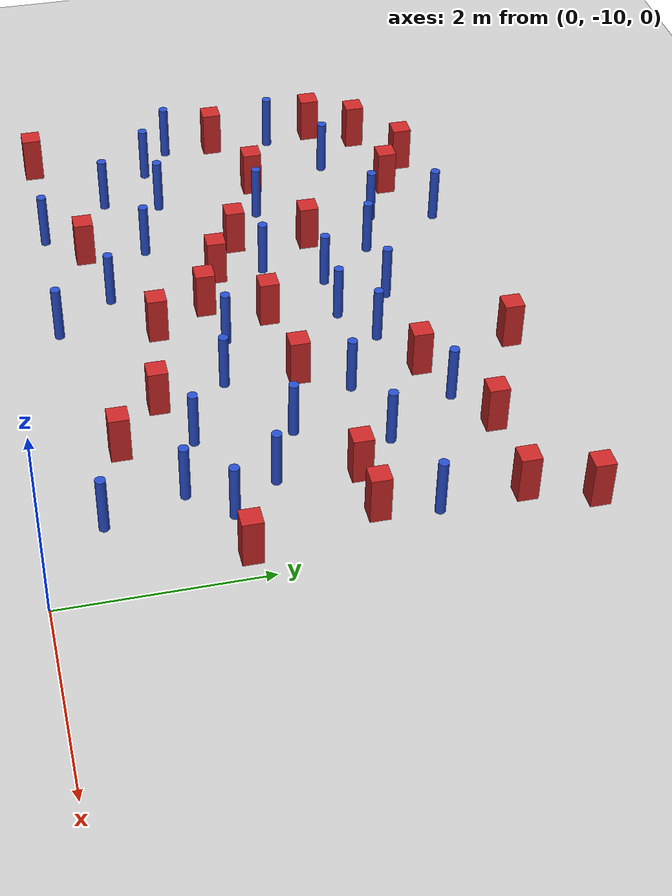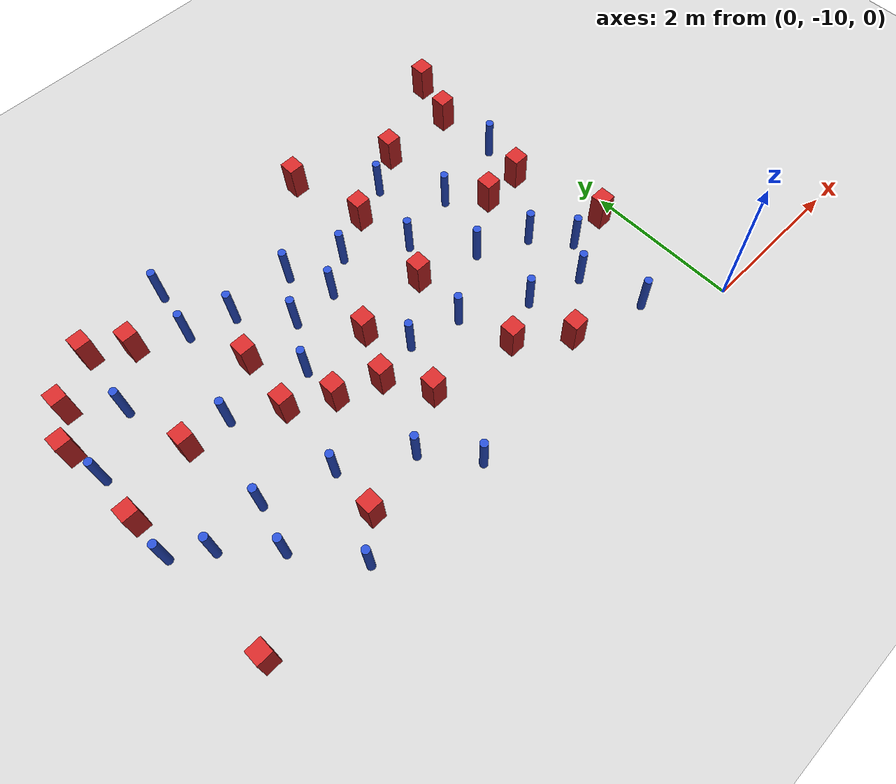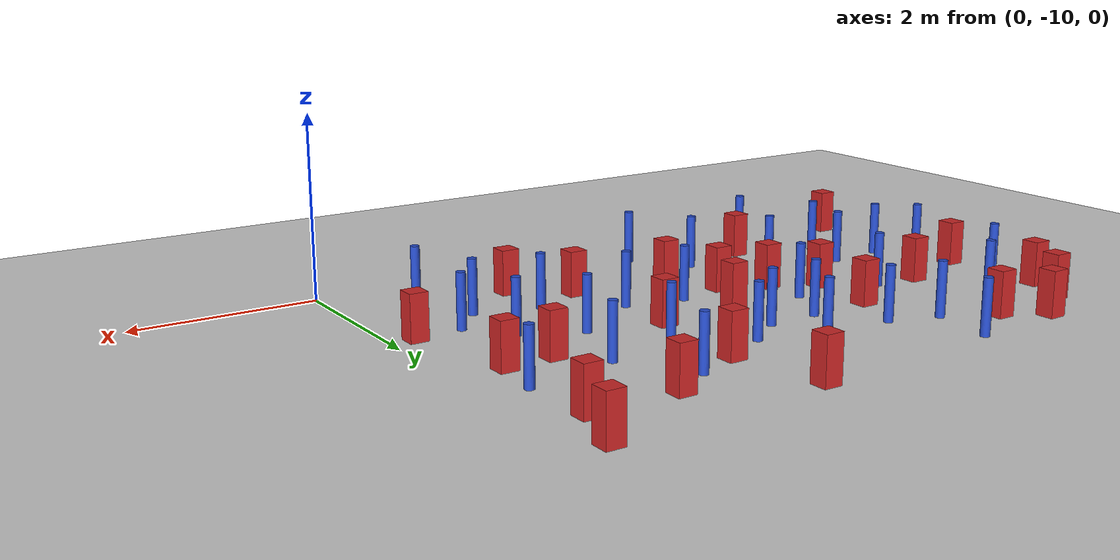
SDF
<sdf version="1.6">
 <world name="default">
  <model name="ground_plane">
   <static>1</static>
   <link name="link">
    <collision name="collision">
     <geometry><plane><normal>0 0 1</normal><size>100 100</size></plane></geometry>
     <surface><friction><ode><mu>100</mu><mu2>50</mu2></ode></friction></surface>
    </collision>
    <visual name="visual">
     <cast_shadows>0</cast_shadows>
     <geometry><plane><normal>0 0 1</normal><size>100 100</size></plane></geometry>
     <material>
      <ambient>1.0 1.0 1.0 1.0</ambient>
      <diffuse>0.8 0.8 0.8 1.0</diffuse>
      <specular>0.01 0.01 0.01 1.000000</specular>
     </material>
    </visual>
   </link>
  </model>
  <model name="pole_obstacle0">
   <static>true</static>
   <pose>-6.38855358316 -8.19007024415 7.38925637345e-09 -8.471706928e-08 1.24976765081e-08 -1.74513093015e-07</pose>
   <link name="link">
    <pose>0 0 0.3 0 -0 0</pose>
    <inertial>
     <mass>1</mass>
     <inertia><ixx>0.145833</ixx><ixy>0</ixy><ixz>0</ixz><iyy>0.145833</iyy><iyz>0</iyz><izz>0.125</izz></inertia>
    </inertial>
    <collision name="collision">
     <geometry><cylinder><radius>0.05</radius><length>.6</length></cylinder></geometry>
    </collision>
    <visual name="visual">
     <geometry><cylinder><radius>0.05</radius><length>.6</length></cylinder></geometry>
     <material>
      <script><name>Gazebo/Blue</name><uri>file://media/materials/scripts/gazebo.material</uri></script>
     </material>
    </visual>
   </link>
  </model>
  <model name="pole_obstacle2">
   <static>true</static>
   <pose>-4.92174483459 -5.19918030362 7.38925637345e-09 -8.47170692796e-08 1.24976764786e-08 -1.74513093032e-07</pose>
   <link name="link">
    <pose>0 0 0.3 0 -0 0</pose>
    <inertial>
     <mass>1</mass>
     <inertia><ixx>0.145833</ixx><ixy>0</ixy><ixz>0</ixz><iyy>0.145833</iyy><iyz>0</iyz><izz>0.125</izz></inertia>
    </inertial>
    <collision name="collision">
     <geometry><cylinder><radius>0.05</radius><length>.6</length></cylinder></geometry>
    </collision>
    <visual name="visual">
     <geometry><cylinder><radius>0.05</radius><length>.6</length></cylinder></geometry>
     <material>
      <script><name>Gazebo/Blue</name><uri>file://media/materials/scripts/gazebo.material</uri></script>
     </material>
    </visual>
   </link>
  </model>
  <model name="pole_obstacle3">
   <static>true</static>
   <pose>-1.77367611827 -7.47329240971 7.38925637345e-09 -8.47170692799e-08 1.24976765033e-08 -1.74513093018e-07</pose>
   <link name="link">
    <pose>0 0 0.3 0 -0 0</pose>
    <inertial>
     <mass>1</mass>
     <inertia><ixx>0.145833</ixx><ixy>0</ixy><ixz>0</ixz><iyy>0.145833</iyy><iyz>0</iyz><izz>0.125</izz></inertia>
    </inertial>
    <collision name="collision">
     <geometry><cylinder><radius>0.05</radius><length>.6</length></cylinder></geometry>
    </collision>
    <visual name="visual">
     <geometry><cylinder><radius>0.05</radius><length>.6</length></cylinder></geometry>
     <material>
      <script><name>Gazebo/Blue</name><uri>file://media/materials/scripts/gazebo.material</uri></script>
     </material>
    </visual>
   </link>
  </model>
  <model name="square_post_obstacle7">
   <static>true</static>
   <pose>-0.259969756508 -8.18840143849 1.91545236811e-07 -7.35059704564e-06 1.12565212e-07 2.39332434364e-05</pose>
   <link name="link">
    <pose>0 0 0.25 0 -0 0</pose>
    <inertial>
     <mass>100</mass>
     <inertia>
      <ixx>0.166667</ixx>
      <ixy>0</ixy>
      <ixz>0</ixz>
      <iyy>0.166667</iyy>
      <iyz>0</iyz>
      <izz>0.166667</izz>
     </inertia>
    </inertial>
    <collision name="collision"><geometry><box><size>.2 .2 .5</size></box></geometry></collision>
    <visual name="visual">
     <geometry><box><size>.2 .2 .5</size></box></geometry>
     <material>
      <script><name>Gazebo/Red</name><uri>file://media/materials/scripts/gazebo.material</uri></script>
     </material>
    </visual>
   </link>
  </model>
  <model name="square_post_obstacle14">
   <static>true</static>
   <pose>-1.079137791 -6.99237156934 1.91545236811e-07 -7.35059704564e-06 1.12565212e-07 2.39332434364e-05</pose>
   <link name="link">
    <pose>0 0 0.25 0 -0 0</pose>
    <inertial>
     <mass>100</mass>
     <inertia>
      <ixx>0.166667</ixx>
      <ixy>0</ixy>
      <ixz>0</ixz>
      <iyy>0.166667</iyy>
      <iyz>0</iyz>
      <izz>0.166667</izz>
     </inertia>
    </inertial>
    <collision name="collision"><geometry><box><size>.2 .2 .5</size></box></geometry></collision>
    <visual name="visual">
     <geometry><box><size>.2 .2 .5</size></box></geometry>
     <material>
      <script><name>Gazebo/Red</name><uri>file://media/materials/scripts/gazebo.material</uri></script>
     </material>
    </visual>
   </link>
  </model>
  <model name="pole_obstacle10">
   <static>true</static>
   <pose>-3.68967531509 -9.48082544224 7.38925637345e-09 -8.47170692793e-08 1.24976764408e-08 -1.74513093041e-07</pose>
   <link name="link">
    <pose>0 0 0.3 0 -0 0</pose>
    <inertial>
     <mass>1</mass>
     <inertia><ixx>0.145833</ixx><ixy>0</ixy><ixz>0</ixz><iyy>0.145833</iyy><iyz>0</iyz><izz>0.125</izz></inertia>
    </inertial>
    <collision name="collision">
     <geometry><cylinder><radius>0.05</radius><length>.6</length></cylinder></geometry>
    </collision>
    <visual name="visual">
     <geometry><cylinder><radius>0.05</radius><length>.6</length></cylinder></geometry>
     <material>
      <script><name>Gazebo/Blue</name><uri>file://media/materials/scripts/gazebo.material</uri></script>
     </material>
    </visual>
   </link>
  </model>
  <model name="pole_obstacle16">
   <static>true</static>
   <pose>-1.82667973989 -8.42245402673 7.38925637345e-09 -8.47170692798e-08 1.24976764881e-08 -1.74513093027e-07</pose>
   <link name="link">
    <pose>0 0 0.3 0 -0 0</pose>
    <inertial>
     <mass>1</mass>
     <inertia><ixx>0.145833</ixx><ixy>0</ixy><ixz>0</ixz><iyy>0.145833</iyy><iyz>0</iyz><izz>0.125</izz></inertia>
    </inertial>
    <collision name="collision">
     <geometry><cylinder><radius>0.05</radius><length>.6</length></cylinder></geometry>
    </collision>
    <visual name="visual">
     <geometry><cylinder><radius>0.05</radius><length>.6</length></cylinder></geometry>
     <material>
      <script><name>Gazebo/Blue</name><uri>file://media/materials/scripts/gazebo.material</uri></script>
     </material>
    </visual>
   </link>
  </model>
  <model name="square_post_obstacle29">
   <static>true</static>
   <pose>-0.518212967152 -5.57949681128 1.91545236811e-07 -7.35059704564e-06 1.12565212e-07 2.39332434364e-05</pose>
   <link name="link">
    <pose>0 0 0.25 0 -0 0</pose>
    <inertial>
     <mass>100</mass>
     <inertia>
      <ixx>0.166667</ixx>
      <ixy>0</ixy>
      <ixz>0</ixz>
      <iyy>0.166667</iyy>
      <iyz>0</iyz>
      <izz>0.166667</izz>
     </inertia>
    </inertial>
    <collision name="collision"><geometry><box><size>.2 .2 .5</size></box></geometry></collision>
    <visual name="visual">
     <geometry><box><size>.2 .2 .5</size></box></geometry>
     <material>
      <script><name>Gazebo/Red</name><uri>file://media/materials/scripts/gazebo.material</uri></script>
     </material>
    </visual>
   </link>
  </model>
  <model name="square_post_obstacle31">
   <static>true</static>
   <pose>-4.33141600609 -7.74793486314 1.91545236811e-07 -7.35059704564e-06 1.12565212e-07 2.39332434364e-05</pose>
   <link name="link">
    <pose>0 0 0.25 0 -0 0</pose>
    <inertial>
     <mass>100</mass>
     <inertia>
      <ixx>0.166667</ixx>
      <ixy>0</ixy>
      <ixz>0</ixz>
      <iyy>0.166667</iyy>
      <iyz>0</iyz>
      <izz>0.166667</izz>
     </inertia>
    </inertial>
    <collision name="collision"><geometry><box><size>.2 .2 .5</size></box></geometry></collision>
    <visual name="visual">
     <geometry><box><size>.2 .2 .5</size></box></geometry>
     <material>
      <script><name>Gazebo/Red</name><uri>file://media/materials/scripts/gazebo.material</uri></script>
     </material>
    </visual>
   </link>
  </model>
  <model name="pole_obstacle36">
   <static>true</static>
   <pose>-1.13288211055 -8.6263354626 7.38925637345e-09 -8.47170692798e-08 1.24976764881e-08 -1.74513093027e-07</pose>
   <link name="link">
    <pose>0 0 0.3 0 -0 0</pose>
    <inertial>
     <mass>1</mass>
     <inertia><ixx>0.145833</ixx><ixy>0</ixy><ixz>0</ixz><iyy>0.145833</iyy><iyz>0</iyz><izz>0.125</izz></inertia>
    </inertial>
    <collision name="collision">
     <geometry><cylinder><radius>0.05</radius><length>.6</length></cylinder></geometry>
    </collision>
    <visual name="visual">
     <geometry><cylinder><radius>0.05</radius><length>.6</length></cylinder></geometry>
     <material>
      <script><name>Gazebo/Blue</name><uri>file://media/materials/scripts/gazebo.material</uri></script>
     </material>
    </visual>
   </link>
  </model>
  <model name="square_post_obstacle38">
   <static>true</static>
   <pose>-3.80681689579 -7.96069877337 1.91545236811e-07 -7.35059704564e-06 1.12565212e-07 2.39332434364e-05</pose>
   <link name="link">
    <pose>0 0 0.25 0 -0 0</pose>
    <inertial>
     <mass>100</mass>
     <inertia>
      <ixx>0.166667</ixx>
      <ixy>0</ixy>
      <ixz>0</ixz>
      <iyy>0.166667</iyy>
      <iyz>0</iyz>
      <izz>0.166667</izz>
     </inertia>
    </inertial>
    <collision name="collision"><geometry><box><size>.2 .2 .5</size></box></geometry></collision>
    <visual name="visual">
     <geometry><box><size>.2 .2 .5</size></box></geometry>
     <material>
      <script><name>Gazebo/Red</name><uri>file://media/materials/scripts/gazebo.material</uri></script>
     </material>
    </visual>
   </link>
  </model>
  <model name="square_post_obstacle40">
   <static>true</static>
   <pose>-5.88447139776 -7.05472269797 1.91545236811e-07 -7.35059704564e-06 1.12565212e-07 2.39332434364e-05</pose>
   <link name="link">
    <pose>0 0 0.25 0 -0 0</pose>
    <inertial>
     <mass>100</mass>
     <inertia>
      <ixx>0.166667</ixx>
      <ixy>0</ixy>
      <ixz>0</ixz>
      <iyy>0.166667</iyy>
      <iyz>0</iyz>
      <izz>0.166667</izz>
     </inertia>
    </inertial>
    <collision name="collision"><geometry><box><size>.2 .2 .5</size></box></geometry></collision>
    <visual name="visual">
     <geometry><box><size>.2 .2 .5</size></box></geometry>
     <material>
      <script><name>Gazebo/Red</name><uri>file://media/materials/scripts/gazebo.material</uri></script>
     </material>
    </visual>
   </link>
  </model>
  <model name="square_post_obstacle41">
   <static>true</static>
   <pose>-1.82425942586 -9.12854853195 1.91545236811e-07 -7.35059704564e-06 1.12565212e-07 2.39332434364e-05</pose>
   <link name="link">
    <pose>0 0 0.25 0 -0 0</pose>
    <inertial>
     <mass>100</mass>
     <inertia>
      <ixx>0.166667</ixx>
      <ixy>0</ixy>
      <ixz>0</ixz>
      <iyy>0.166667</iyy>
      <iyz>0</iyz>
      <izz>0.166667</izz>
     </inertia>
    </inertial>
    <collision name="collision"><geometry><box><size>.2 .2 .5</size></box></geometry></collision>
    <visual name="visual">
     <geometry><box><size>.2 .2 .5</size></box></geometry>
     <material>
      <script><name>Gazebo/Red</name><uri>file://media/materials/scripts/gazebo.material</uri></script>
     </material>
    </visual>
   </link>
  </model>
  <model name="pole_obstacle57">
   <static>true</static>
   <pose>-5.32935333148 -9.44081227914 7.38925637345e-09 -8.471706928e-08 1.24976765081e-08 -1.74513093015e-07</pose>
   <link name="link">
    <pose>0 0 0.3 0 -0 0</pose>
    <inertial>
     <mass>1</mass>
     <inertia><ixx>0.145833</ixx><ixy>0</ixy><ixz>0</ixz><iyy>0.145833</iyy><iyz>0</iyz><izz>0.125</izz></inertia>
    </inertial>
    <collision name="collision">
     <geometry><cylinder><radius>0.05</radius><length>.6</length></cylinder></geometry>
    </collision>
    <visual name="visual">
     <geometry><cylinder><radius>0.05</radius><length>.6</length></cylinder></geometry>
     <material>
      <script><name>Gazebo/Blue</name><uri>file://media/materials/scripts/gazebo.material</uri></script>
     </material>
    </visual>
   </link>
  </model>
  <model name="pole_obstacle75">
   <static>true</static>
   <pose>-6.75616686308 -6.69125466715 7.38925637345e-09 -8.47170692796e-08 1.24976764786e-08 -1.74513093032e-07</pose>
   <link name="link">
    <pose>0 0 0.3 0 -0 0</pose>
    <inertial>
     <mass>1</mass>
     <inertia><ixx>0.145833</ixx><ixy>0</ixy><ixz>0</ixz><iyy>0.145833</iyy><iyz>0</iyz><izz>0.125</izz></inertia>
    </inertial>
    <collision name="collision">
     <geometry><cylinder><radius>0.05</radius><length>.6</length></cylinder></geometry>
    </collision>
    <visual name="visual">
     <geometry><cylinder><radius>0.05</radius><length>.6</length></cylinder></geometry>
     <material>
      <script><name>Gazebo/Blue</name><uri>file://media/materials/scripts/gazebo.material</uri></script>
     </material>
    </visual>
   </link>
  </model>
  <model name="square_post_obstacle77">
   <static>true</static>
   <pose>-2.3973390768 -8.67446586041 1.91545236811e-07 -7.35059704564e-06 1.12565212e-07 2.39332434364e-05</pose>
   <link name="link">
    <pose>0 0 0.25 0 -0 0</pose>
    <inertial>
     <mass>100</mass>
     <inertia>
      <ixx>0.166667</ixx>
      <ixy>0</ixy>
      <ixz>0</ixz>
      <iyy>0.166667</iyy>
      <iyz>0</iyz>
      <izz>0.166667</izz>
     </inertia>
    </inertial>
    <collision name="collision"><geometry><box><size>.2 .2 .5</size></box></geometry></collision>
    <visual name="visual">
     <geometry><box><size>.2 .2 .5</size></box></geometry>
     <material>
      <script><name>Gazebo/Red</name><uri>file://media/materials/scripts/gazebo.material</uri></script>
     </material>
    </visual>
   </link>
  </model>
  <model name="pole_obstacle79">
   <static>true</static>
   <pose>-4.15128798264 -8.89158451896 7.38925637345e-09 -8.471706928e-08 1.24976765081e-08 -1.74513093015e-07</pose>
   <link name="link">
    <pose>0 0 0.3 0 -0 0</pose>
    <inertial>
     <mass>1</mass>
     <inertia><ixx>0.145833</ixx><ixy>0</ixy><ixz>0</ixz><iyy>0.145833</iyy><iyz>0</iyz><izz>0.125</izz></inertia>
    </inertial>
    <collision name="collision">
     <geometry><cylinder><radius>0.05</radius><length>.6</length></cylinder></geometry>
    </collision>
    <visual name="visual">
     <geometry><cylinder><radius>0.05</radius><length>.6</length></cylinder></geometry>
     <material>
      <script><name>Gazebo/Blue</name><uri>file://media/materials/scripts/gazebo.material</uri></script>
     </material>
    </visual>
   </link>
  </model>
  <model name="pole_obstacle96">
   <static>true</static>
   <pose>-5.87450114822 -8.72080005249 7.38925637345e-09 -8.471706928e-08 1.24976765081e-08 -1.74513093015e-07</pose>
   <link name="link">
    <pose>0 0 0.3 0 -0 0</pose>
    <inertial>
     <mass>1</mass>
     <inertia><ixx>0.145833</ixx><ixy>0</ixy><ixz>0</ixz><iyy>0.145833</iyy><iyz>0</iyz><izz>0.125</izz></inertia>
    </inertial>
    <collision name="collision">
     <geometry><cylinder><radius>0.05</radius><length>.6</length></cylinder></geometry>
    </collision>
    <visual name="visual">
     <geometry><cylinder><radius>0.05</radius><length>.6</length></cylinder></geometry>
     <material>
      <script><name>Gazebo/Blue</name><uri>file://media/materials/scripts/gazebo.material</uri></script>
     </material>
    </visual>
   </link>
  </model>
  <model name="square_post_obstacle84">
   <static>true</static>
   <pose>-2.55480404602 -7.25199324311 1.91545236811e-07 -7.35059704564e-06 1.12565212e-07 2.39332434364e-05</pose>
   <link name="link">
    <pose>0 0 0.25 0 -0 0</pose>
    <inertial>
     <mass>100</mass>
     <inertia>
      <ixx>0.166667</ixx>
      <ixy>0</ixy>
      <ixz>0</ixz>
      <iyy>0.166667</iyy>
      <iyz>0</iyz>
      <izz>0.166667</izz>
     </inertia>
    </inertial>
    <collision name="collision"><geometry><box><size>.2 .2 .5</size></box></geometry></collision>
    <visual name="visual">
     <geometry><box><size>.2 .2 .5</size></box></geometry>
     <material>
      <script><name>Gazebo/Red</name><uri>file://media/materials/scripts/gazebo.material</uri></script>
     </material>
    </visual>
   </link>
  </model>
  <model name="pole_obstacle97">
   <static>true</static>
   <pose>-2.28363422326 -6.78053721566 7.38925637345e-09 -8.47170692798e-08 1.24976765033e-08 -1.74513093019e-07</pose>
   <link name="link">
    <pose>0 0 0.3 0 -0 0</pose>
    <inertial>
     <mass>1</mass>
     <inertia><ixx>0.145833</ixx><ixy>0</ixy><ixz>0</ixz><iyy>0.145833</iyy><iyz>0</iyz><izz>0.125</izz></inertia>
    </inertial>
    <collision name="collision">
     <geometry><cylinder><radius>0.05</radius><length>.6</length></cylinder></geometry>
    </collision>
    <visual name="visual">
     <geometry><cylinder><radius>0.05</radius><length>.6</length></cylinder></geometry>
     <material>
      <script><name>Gazebo/Blue</name><uri>file://media/materials/scripts/gazebo.material</uri></script>
     </material>
    </visual>
   </link>
  </model>
  <model name="pole_obstacle102">
   <static>true</static>
   <pose>-4.91969027311 -8.4096211677 7.38925637345e-09 -8.471706928e-08 1.24976765081e-08 -1.74513093015e-07</pose>
   <link name="link">
    <pose>0 0 0.3 0 -0 0</pose>
    <inertial>
     <mass>1</mass>
     <inertia><ixx>0.145833</ixx><ixy>0</ixy><ixz>0</ixz><iyy>0.145833</iyy><iyz>0</iyz><izz>0.125</izz></inertia>
    </inertial>
    <collision name="collision">
     <geometry><cylinder><radius>0.05</radius><length>.6</length></cylinder></geometry>
    </collision>
    <visual name="visual">
     <geometry><cylinder><radius>0.05</radius><length>.6</length></cylinder></geometry>
     <material>
      <script><name>Gazebo/Blue</name><uri>file://media/materials/scripts/gazebo.material</uri></script>
     </material>
    </visual>
   </link>
  </model>
  <model name="pole_obstacle103">
   <static>true</static>
   <pose>-2.99522426811 -6.33453048185 7.38925637345e-09 -8.47170692798e-08 1.24976765033e-08 -1.74513093019e-07</pose>
   <link name="link">
    <pose>0 0 0.3 0 -0 0</pose>
    <inertial>
     <mass>1</mass>
     <inertia><ixx>0.145833</ixx><ixy>0</ixy><ixz>0</ixz><iyy>0.145833</iyy><iyz>0</iyz><izz>0.125</izz></inertia>
    </inertial>
    <collision name="collision">
     <geometry><cylinder><radius>0.05</radius><length>.6</length></cylinder></geometry>
    </collision>
    <visual name="visual">
     <geometry><cylinder><radius>0.05</radius><length>.6</length></cylinder></geometry>
     <material>
      <script><name>Gazebo/Blue</name><uri>file://media/materials/scripts/gazebo.material</uri></script>
     </material>
    </visual>
   </link>
  </model>
  <model name="pole_obstacle111">
   <static>true</static>
   <pose>-1.47103036968 -6.5924580149 7.38925637345e-09 -8.47170692799e-08 1.24976765033e-08 -1.74513093018e-07</pose>
   <link name="link">
    <pose>0 0 0.3 0 -0 0</pose>
    <inertial>
     <mass>1</mass>
     <inertia><ixx>0.145833</ixx><ixy>0</ixy><ixz>0</ixz><iyy>0.145833</iyy><iyz>0</iyz><izz>0.125</izz></inertia>
    </inertial>
    <collision name="collision">
     <geometry><cylinder><radius>0.05</radius><length>.6</length></cylinder></geometry>
    </collision>
    <visual name="visual">
     <geometry><cylinder><radius>0.05</radius><length>.6</length></cylinder></geometry>
     <material>
      <script><name>Gazebo/Blue</name><uri>file://media/materials/scripts/gazebo.material</uri></script>
     </material>
    </visual>
   </link>
  </model>
  <model name="pole_obstacle112">
   <static>true</static>
   <pose>-3.65544846267 -6.06910636416 7.38925637345e-09 -8.47170692794e-08 1.24976764468e-08 -1.7451309304e-07</pose>
   <link name="link">
    <pose>0 0 0.3 0 -0 0</pose>
    <inertial>
     <mass>1</mass>
     <inertia><ixx>0.145833</ixx><ixy>0</ixy><ixz>0</ixz><iyy>0.145833</iyy><iyz>0</iyz><izz>0.125</izz></inertia>
    </inertial>
    <collision name="collision">
     <geometry><cylinder><radius>0.05</radius><length>.6</length></cylinder></geometry>
    </collision>
    <visual name="visual">
     <geometry><cylinder><radius>0.05</radius><length>.6</length></cylinder></geometry>
     <material>
      <script><name>Gazebo/Blue</name><uri>file://media/materials/scripts/gazebo.material</uri></script>
     </material>
    </visual>
   </link>
  </model>
  <model name="square_post_obstacle104">
   <static>true</static>
   <pose>-1.48848563517 -5.57085929757 1.91545236811e-07 -7.35059704564e-06 1.12565212e-07 2.39332434364e-05</pose>
   <link name="link">
    <pose>0 0 0.25 0 -0 0</pose>
    <inertial>
     <mass>100</mass>
     <inertia>
      <ixx>0.166667</ixx>
      <ixy>0</ixy>
      <ixz>0</ixz>
      <iyy>0.166667</iyy>
      <iyz>0</iyz>
      <izz>0.166667</izz>
     </inertia>
    </inertial>
    <collision name="collision"><geometry><box><size>.2 .2 .5</size></box></geometry></collision>
    <visual name="visual">
     <geometry><box><size>.2 .2 .5</size></box></geometry>
     <material>
      <script><name>Gazebo/Red</name><uri>file://media/materials/scripts/gazebo.material</uri></script>
     </material>
    </visual>
   </link>
  </model>
  <model name="pole_obstacle121">
   <static>true</static>
   <pose>-0.881486607298 -9.40994951746 7.38925637345e-09 -8.47170692797e-08 1.249767648e-08 -1.74513093032e-07</pose>
   <link name="link">
    <pose>0 0 0.3 0 -0 0</pose>
    <inertial>
     <mass>1</mass>
     <inertia><ixx>0.145833</ixx><ixy>0</ixy><ixz>0</ixz><iyy>0.145833</iyy><iyz>0</iyz><izz>0.125</izz></inertia>
    </inertial>
    <collision name="collision">
     <geometry><cylinder><radius>0.05</radius><length>.6</length></cylinder></geometry>
    </collision>
    <visual name="visual">
     <geometry><cylinder><radius>0.05</radius><length>.6</length></cylinder></geometry>
     <material>
      <script><name>Gazebo/Blue</name><uri>file://media/materials/scripts/gazebo.material</uri></script>
     </material>
    </visual>
   </link>
  </model>
  <model name="pole_obstacle127">
   <static>true</static>
   <pose>-2.59940136201 -7.98517056393 7.38925637345e-09 -8.47170692799e-08 1.24976764977e-08 -1.74513093022e-07</pose>
   <link name="link">
    <pose>0 0 0.3 0 -0 0</pose>
    <inertial>
     <mass>1</mass>
     <inertia><ixx>0.145833</ixx><ixy>0</ixy><ixz>0</ixz><iyy>0.145833</iyy><iyz>0</iyz><izz>0.125</izz></inertia>
    </inertial>
    <collision name="collision">
     <geometry><cylinder><radius>0.05</radius><length>.6</length></cylinder></geometry>
    </collision>
    <visual name="visual">
     <geometry><cylinder><radius>0.05</radius><length>.6</length></cylinder></geometry>
     <material>
      <script><name>Gazebo/Blue</name><uri>file://media/materials/scripts/gazebo.material</uri></script>
     </material>
    </visual>
   </link>
  </model>
  <model name="square_post_obstacle113">
   <static>true</static>
   <pose>-2.67550570815 -5.03897207227 1.91545236811e-07 -7.35059704564e-06 1.12565212e-07 2.39332434364e-05</pose>
   <link name="link">
    <pose>0 0 0.25 0 -0 0</pose>
    <inertial>
     <mass>100</mass>
     <inertia>
      <ixx>0.166667</ixx>
      <ixy>0</ixy>
      <ixz>0</ixz>
      <iyy>0.166667</iyy>
      <iyz>0</iyz>
      <izz>0.166667</izz>
     </inertia>
    </inertial>
    <collision name="collision"><geometry><box><size>.2 .2 .5</size></box></geometry></collision>
    <visual name="visual">
     <geometry><box><size>.2 .2 .5</size></box></geometry>
     <material>
      <script><name>Gazebo/Red</name><uri>file://media/materials/scripts/gazebo.material</uri></script>
     </material>
    </visual>
   </link>
  </model>
  <model name="pole_obstacle128">
   <static>true</static>
   <pose>-0.461080290918 -6.40034527573 7.38925637345e-09 -8.471706928e-08 1.24976765062e-08 -1.74513093016e-07</pose>
   <link name="link">
    <pose>0 0 0.3 0 -0 0</pose>
    <inertial>
     <mass>1</mass>
     <inertia><ixx>0.145833</ixx><ixy>0</ixy><ixz>0</ixz><iyy>0.145833</iyy><iyz>0</iyz><izz>0.125</izz></inertia>
    </inertial>
    <collision name="collision">
     <geometry><cylinder><radius>0.05</radius><length>.6</length></cylinder></geometry>
    </collision>
    <visual name="visual">
     <geometry><cylinder><radius>0.05</radius><length>.6</length></cylinder></geometry>
     <material>
      <script><name>Gazebo/Blue</name><uri>file://media/materials/scripts/gazebo.material</uri></script>
     </material>
    </visual>
   </link>
  </model>
  <model name="square_post_obstacle116">
   <static>true</static>
   <pose>-6.5924234342 -5.70506169731 1.91545236811e-07 -7.35059704564e-06 1.12565212e-07 2.39332434364e-05</pose>
   <link name="link">
    <pose>0 0 0.25 0 -0 0</pose>
    <inertial>
     <mass>100</mass>
     <inertia>
      <ixx>0.166667</ixx>
      <ixy>0</ixy>
      <ixz>0</ixz>
      <iyy>0.166667</iyy>
      <iyz>0</iyz>
      <izz>0.166667</izz>
     </inertia>
    </inertial>
    <collision name="collision"><geometry><box><size>.2 .2 .5</size></box></geometry></collision>
    <visual name="visual">
     <geometry><box><size>.2 .2 .5</size></box></geometry>
     <material>
      <script><name>Gazebo/Red</name><uri>file://media/materials/scripts/gazebo.material</uri></script>
     </material>
    </visual>
   </link>
  </model>
  <model name="square_post_obstacle127">
   <static>true</static>
   <pose>-4.82858910606 -7.45452780967 1.91545236811e-07 -7.35059704564e-06 1.12565212e-07 2.39332434364e-05</pose>
   <link name="link">
    <pose>0 0 0.25 0 -0 0</pose>
    <inertial>
     <mass>100</mass>
     <inertia>
      <ixx>0.166667</ixx>
      <ixy>0</ixy>
      <ixz>0</ixz>
      <iyy>0.166667</iyy>
      <iyz>0</iyz>
      <izz>0.166667</izz>
     </inertia>
    </inertial>
    <collision name="collision"><geometry><box><size>.2 .2 .5</size></box></geometry></collision>
    <visual name="visual">
     <geometry><box><size>.2 .2 .5</size></box></geometry>
     <material>
      <script><name>Gazebo/Red</name><uri>file://media/materials/scripts/gazebo.material</uri></script>
     </material>
    </visual>
   </link>
  </model>
  <model name="square_post_obstacle129">
   <static>true</static>
   <pose>-5.58111382877 -5.58398083341 1.91545236811e-07 -7.35059704564e-06 1.12565212e-07 2.39332434364e-05</pose>
   <link name="link">
    <pose>0 0 0.25 0 -0 0</pose>
    <inertial>
     <mass>100</mass>
     <inertia>
      <ixx>0.166667</ixx>
      <ixy>0</ixy>
      <ixz>0</ixz>
      <iyy>0.166667</iyy>
      <iyz>0</iyz>
      <izz>0.166667</izz>
     </inertia>
    </inertial>
    <collision name="collision"><geometry><box><size>.2 .2 .5</size></box></geometry></collision>
    <visual name="visual">
     <geometry><box><size>.2 .2 .5</size></box></geometry>
     <material>
      <script><name>Gazebo/Red</name><uri>file://media/materials/scripts/gazebo.material</uri></script>
     </material>
    </visual>
   </link>
  </model>
  <model name="square_post_obstacle135">
   <static>true</static>
   <pose>-6.78763515953 -7.34821639282 1.91545236811e-07 -7.35059704564e-06 1.12565212e-07 2.39332434364e-05</pose>
   <link name="link">
    <pose>0 0 0.25 0 -0 0</pose>
    <inertial>
     <mass>100</mass>
     <inertia>
      <ixx>0.166667</ixx>
      <ixy>0</ixy>
      <ixz>0</ixz>
      <iyy>0.166667</iyy>
      <iyz>0</iyz>
      <izz>0.166667</izz>
     </inertia>
    </inertial>
    <collision name="collision"><geometry><box><size>.2 .2 .5</size></box></geometry></collision>
    <visual name="visual">
     <geometry><box><size>.2 .2 .5</size></box></geometry>
     <material>
      <script><name>Gazebo/Red</name><uri>file://media/materials/scripts/gazebo.material</uri></script>
     </material>
    </visual>
   </link>
  </model>
  <model name="pole_obstacle151">
   <static>true</static>
   <pose>-0.788950301939 -8.23014061728 7.38925637345e-09 -8.47170692797e-08 1.249767648e-08 -1.74513093032e-07</pose>
   <link name="link">
    <pose>0 0 0.3 0 -0 0</pose>
    <inertial>
     <mass>1</mass>
     <inertia><ixx>0.145833</ixx><ixy>0</ixy><ixz>0</ixz><iyy>0.145833</iyy><iyz>0</iyz><izz>0.125</izz></inertia>
    </inertial>
    <collision name="collision">
     <geometry><cylinder><radius>0.05</radius><length>.6</length></cylinder></geometry>
    </collision>
    <visual name="visual">
     <geometry><cylinder><radius>0.05</radius><length>.6</length></cylinder></geometry>
     <material>
      <script><name>Gazebo/Blue</name><uri>file://media/materials/scripts/gazebo.material</uri></script>
     </material>
    </visual>
   </link>
  </model>
  <model name="pole_obstacle152">
   <static>true</static>
   <pose>-1.14427444561 -7.77143446473 7.38925637345e-09 -8.47170692799e-08 1.24976765033e-08 -1.74513093018e-07</pose>
   <link name="link">
    <pose>0 0 0.3 0 -0 0</pose>
    <inertial>
     <mass>1</mass>
     <inertia><ixx>0.145833</ixx><ixy>0</ixy><ixz>0</ixz><iyy>0.145833</iyy><iyz>0</iyz><izz>0.125</izz></inertia>
    </inertial>
    <collision name="collision">
     <geometry><cylinder><radius>0.05</radius><length>.6</length></cylinder></geometry>
    </collision>
    <visual name="visual">
     <geometry><cylinder><radius>0.05</radius><length>.6</length></cylinder></geometry>
     <material>
      <script><name>Gazebo/Blue</name><uri>file://media/materials/scripts/gazebo.material</uri></script>
     </material>
    </visual>
   </link>
  </model>
  <model name="pole_obstacle157">
   <static>true</static>
   <pose>-5.03609084282 -5.88340143634 7.38925637345e-09 -8.47170692796e-08 1.24976764786e-08 -1.74513093032e-07</pose>
   <link name="link">
    <pose>0 0 0.3 0 -0 0</pose>
    <inertial>
     <mass>1</mass>
     <inertia><ixx>0.145833</ixx><ixy>0</ixy><ixz>0</ixz><iyy>0.145833</iyy><iyz>0</iyz><izz>0.125</izz></inertia>
    </inertial>
    <collision name="collision">
     <geometry><cylinder><radius>0.05</radius><length>.6</length></cylinder></geometry>
    </collision>
    <visual name="visual">
     <geometry><cylinder><radius>0.05</radius><length>.6</length></cylinder></geometry>
     <material>
      <script><name>Gazebo/Blue</name><uri>file://media/materials/scripts/gazebo.material</uri></script>
     </material>
    </visual>
   </link>
  </model>
  <model name="pole_obstacle158">
   <static>true</static>
   <pose>-4.01058526755 -6.64469307688 7.38925637345e-09 -8.47170692795e-08 1.24976764731e-08 -1.74513093035e-07</pose>
   <link name="link">
    <pose>0 0 0.3 0 -0 0</pose>
    <inertial>
     <mass>1</mass>
     <inertia><ixx>0.145833</ixx><ixy>0</ixy><ixz>0</ixz><iyy>0.145833</iyy><iyz>0</iyz><izz>0.125</izz></inertia>
    </inertial>
    <collision name="collision">
     <geometry><cylinder><radius>0.05</radius><length>.6</length></cylinder></geometry>
    </collision>
    <visual name="visual">
     <geometry><cylinder><radius>0.05</radius><length>.6</length></cylinder></geometry>
     <material>
      <script><name>Gazebo/Blue</name><uri>file://media/materials/scripts/gazebo.material</uri></script>
     </material>
    </visual>
   </link>
  </model>
  <model name="square_post_obstacle152">
   <static>true</static>
   <pose>-6.01941044575 -5.29578586234 1.91545236811e-07 -7.35059704564e-06 1.12565212e-07 2.39332434364e-05</pose>
   <link name="link">
    <pose>0 0 0.25 0 -0 0</pose>
    <inertial>
     <mass>100</mass>
     <inertia>
      <ixx>0.166667</ixx>
      <ixy>0</ixy>
      <ixz>0</ixz>
      <iyy>0.166667</iyy>
      <iyz>0</iyz>
      <izz>0.166667</izz>
     </inertia>
    </inertial>
    <collision name="collision"><geometry><box><size>.2 .2 .5</size></box></geometry></collision>
    <visual name="visual">
     <geometry><box><size>.2 .2 .5</size></box></geometry>
     <material>
      <script><name>Gazebo/Red</name><uri>file://media/materials/scripts/gazebo.material</uri></script>
     </material>
    </visual>
   </link>
  </model>
  <model name="pole_obstacle161">
   <static>true</static>
   <pose>-1.95720780947 -5.85794305109 7.38925637345e-09 -8.47170692799e-08 1.2497676507e-08 -1.74513093016e-07</pose>
   <link name="link">
    <pose>0 0 0.3 0 -0 0</pose>
    <inertial>
     <mass>1</mass>
     <inertia><ixx>0.145833</ixx><ixy>0</ixy><ixz>0</ixz><iyy>0.145833</iyy><iyz>0</iyz><izz>0.125</izz></inertia>
    </inertial>
    <collision name="collision">
     <geometry><cylinder><radius>0.05</radius><length>.6</length></cylinder></geometry>
    </collision>
    <visual name="visual">
     <geometry><cylinder><radius>0.05</radius><length>.6</length></cylinder></geometry>
     <material>
      <script><name>Gazebo/Blue</name><uri>file://media/materials/scripts/gazebo.material</uri></script>
     </material>
    </visual>
   </link>
  </model>
  <model name="square_post_obstacle159">
   <static>true</static>
   <pose>-4.73719004932 -6.6663418945 1.91545236811e-07 -7.35059704564e-06 1.12565212e-07 2.39332434364e-05</pose>
   <link name="link">
    <pose>0 0 0.25 0 -0 0</pose>
    <inertial>
     <mass>100</mass>
     <inertia>
      <ixx>0.166667</ixx>
      <ixy>0</ixy>
      <ixz>0</ixz>
      <iyy>0.166667</iyy>
      <iyz>0</iyz>
      <izz>0.166667</izz>
     </inertia>
    </inertial>
    <collision name="collision"><geometry><box><size>.2 .2 .5</size></box></geometry></collision>
    <visual name="visual">
     <geometry><box><size>.2 .2 .5</size></box></geometry>
     <material>
      <script><name>Gazebo/Red</name><uri>file://media/materials/scripts/gazebo.material</uri></script>
     </material>
    </visual>
   </link>
  </model>
  <model name="square_post_obstacle160">
   <static>true</static>
   <pose>-6.68646814022 -9.42162628376 1.91545236811e-07 -7.35059704564e-06 1.12565212e-07 2.39332434364e-05</pose>
   <link name="link">
    <pose>0 0 0.25 0 -0 0</pose>
    <inertial>
     <mass>100</mass>
     <inertia>
      <ixx>0.166667</ixx>
      <ixy>0</ixy>
      <ixz>0</ixz>
      <iyy>0.166667</iyy>
      <iyz>0</iyz>
      <izz>0.166667</izz>
     </inertia>
    </inertial>
    <collision name="collision"><geometry><box><size>.2 .2 .5</size></box></geometry></collision>
    <visual name="visual">
     <geometry><box><size>.2 .2 .5</size></box></geometry>
     <material>
      <script><name>Gazebo/Red</name><uri>file://media/materials/scripts/gazebo.material</uri></script>
     </material>
    </visual>
   </link>
  </model>
  <model name="pole_obstacle171">
   <static>true</static>
   <pose>-5.36684296886 -7.0991983425 7.38925637345e-09 -8.47170692796e-08 1.24976764786e-08 -1.74513093032e-07</pose>
   <link name="link">
    <pose>0 0 0.3 0 -0 0</pose>
    <inertial>
     <mass>1</mass>
     <inertia><ixx>0.145833</ixx><ixy>0</ixy><ixz>0</ixz><iyy>0.145833</iyy><iyz>0</iyz><izz>0.125</izz></inertia>
    </inertial>
    <collision name="collision">
     <geometry><cylinder><radius>0.05</radius><length>.6</length></cylinder></geometry>
    </collision>
    <visual name="visual">
     <geometry><cylinder><radius>0.05</radius><length>.6</length></cylinder></geometry>
     <material>
      <script><name>Gazebo/Blue</name><uri>file://media/materials/scripts/gazebo.material</uri></script>
     </material>
    </visual>
   </link>
  </model>
  <model name="square_post_obstacle167">
   <static>true</static>
   <pose>-2.44218826028 -6.04499406296 1.91545236811e-07 -7.35059704564e-06 1.12565212e-07 2.39332434364e-05</pose>
   <link name="link">
    <pose>0 0 0.25 0 -0 0</pose>
    <inertial>
     <mass>100</mass>
     <inertia>
      <ixx>0.166667</ixx>
      <ixy>0</ixy>
      <ixz>0</ixz>
      <iyy>0.166667</iyy>
      <iyz>0</iyz>
      <izz>0.166667</izz>
     </inertia>
    </inertial>
    <collision name="collision"><geometry><box><size>.2 .2 .5</size></box></geometry></collision>
    <visual name="visual">
     <geometry><box><size>.2 .2 .5</size></box></geometry>
     <material>
      <script><name>Gazebo/Red</name><uri>file://media/materials/scripts/gazebo.material</uri></script>
     </material>
    </visual>
   </link>
  </model>
  <model name="pole_obstacle180">
   <static>true</static>
   <pose>-6.7917798107 -7.88909140276 7.38925637345e-09 -8.47170692796e-08 1.24976764786e-08 -1.74513093032e-07</pose>
   <link name="link">
    <pose>0 0 0.3 0 -0 0</pose>
    <inertial>
     <mass>1</mass>
     <inertia><ixx>0.145833</ixx><ixy>0</ixy><ixz>0</ixz><iyy>0.145833</iyy><iyz>0</iyz><izz>0.125</izz></inertia>
    </inertial>
    <collision name="collision">
     <geometry><cylinder><radius>0.05</radius><length>.6</length></cylinder></geometry>
    </collision>
    <visual name="visual">
     <geometry><cylinder><radius>0.05</radius><length>.6</length></cylinder></geometry>
     <material>
      <script><name>Gazebo/Blue</name><uri>file://media/materials/scripts/gazebo.material</uri></script>
     </material>
    </visual>
   </link>
  </model>
  <model name="square_post_obstacle170">
   <static>true</static>
   <pose>-3.53013860086 -7.35202216789 1.91545236811e-07 -7.35059704564e-06 1.12565212e-07 2.39332434364e-05</pose>
   <link name="link">
    <pose>0 0 0.25 0 -0 0</pose>
    <inertial>
     <mass>100</mass>
     <inertia>
      <ixx>0.166667</ixx>
      <ixy>0</ixy>
      <ixz>0</ixz>
      <iyy>0.166667</iyy>
      <iyz>0</iyz>
      <izz>0.166667</izz>
     </inertia>
    </inertial>
    <collision name="collision"><geometry><box><size>.2 .2 .5</size></box></geometry></collision>
    <visual name="visual">
     <geometry><box><size>.2 .2 .5</size></box></geometry>
     <material>
      <script><name>Gazebo/Red</name><uri>file://media/materials/scripts/gazebo.material</uri></script>
     </material>
    </visual>
   </link>
  </model>
  <model name="square_post_obstacle171">
   <static>true</static>
   <pose>-4.95090054215 -9.05602474253 1.91545236811e-07 -7.35059704564e-06 1.12565212e-07 2.39332434364e-05</pose>
   <link name="link">
    <pose>0 0 0.25 0 -0 0</pose>
    <inertial>
     <mass>100</mass>
     <inertia>
      <ixx>0.166667</ixx>
      <ixy>0</ixy>
      <ixz>0</ixz>
      <iyy>0.166667</iyy>
      <iyz>0</iyz>
      <izz>0.166667</izz>
     </inertia>
    </inertial>
    <collision name="collision"><geometry><box><size>.2 .2 .5</size></box></geometry></collision>
    <visual name="visual">
     <geometry><box><size>.2 .2 .5</size></box></geometry>
     <material>
      <script><name>Gazebo/Red</name><uri>file://media/materials/scripts/gazebo.material</uri></script>
     </material>
    </visual>
   </link>
  </model>
  <model name="square_post_obstacle175">
   <static>true</static>
   <pose>-0.311512093475 -4.95506712837 1.91545236811e-07 -7.35059704564e-06 1.12565212e-07 2.39332434364e-05</pose>
   <link name="link">
    <pose>0 0 0.25 0 -0 0</pose>
    <inertial>
     <mass>100</mass>
     <inertia>
      <ixx>0.166667</ixx>
      <ixy>0</ixy>
      <ixz>0</ixz>
      <iyy>0.166667</iyy>
      <iyz>0</iyz>
      <izz>0.166667</izz>
     </inertia>
    </inertial>
    <collision name="collision"><geometry><box><size>.2 .2 .5</size></box></geometry></collision>
    <visual name="visual">
     <geometry><box><size>.2 .2 .5</size></box></geometry>
     <material>
      <script><name>Gazebo/Red</name><uri>file://media/materials/scripts/gazebo.material</uri></script>
     </material>
    </visual>
   </link>
  </model>
  <model name="square_post_obstacle184">
   <static>true</static>
   <pose>-6.84509199214 -6.18301811952 1.91545236811e-07 -7.35059704564e-06 1.12565212e-07 2.39332434364e-05</pose>
   <link name="link">
    <pose>0 0 0.25 0 -0 0</pose>
    <inertial>
     <mass>100</mass>
     <inertia>
      <ixx>0.166667</ixx>
      <ixy>0</ixy>
      <ixz>0</ixz>
      <iyy>0.166667</iyy>
      <iyz>0</iyz>
      <izz>0.166667</izz>
     </inertia>
    </inertial>
    <collision name="collision"><geometry><box><size>.2 .2 .5</size></box></geometry></collision>
    <visual name="visual">
     <geometry><box><size>.2 .2 .5</size></box></geometry>
     <material>
      <script><name>Gazebo/Red</name><uri>file://media/materials/scripts/gazebo.material</uri></script>
     </material>
    </visual>
   </link>
  </model>
  <model name="square_post_obstacle198">
   <static>true</static>
   <pose>-3.50430196284 -8.50448221174 1.91545236811e-07 -7.35059704564e-06 1.12565212e-07 2.39332434364e-05</pose>
   <link name="link">
    <pose>0 0 0.25 0 -0 0</pose>
    <inertial>
     <mass>100</mass>
     <inertia>
      <ixx>0.166667</ixx>
      <ixy>0</ixy>
      <ixz>0</ixz>
      <iyy>0.166667</iyy>
      <iyz>0</iyz>
      <izz>0.166667</izz>
     </inertia>
    </inertial>
    <collision name="collision"><geometry><box><size>.2 .2 .5</size></box></geometry></collision>
    <visual name="visual">
     <geometry><box><size>.2 .2 .5</size></box></geometry>
     <material>
      <script><name>Gazebo/Red</name><uri>file://media/materials/scripts/gazebo.material</uri></script>
     </material>
    </visual>
   </link>
  </model>
  <model name="square_post_obstacle201">
   <static>true</static>
   <pose>-0.544131755606 -6.96286288545 1.91545236811e-07 -7.35059704564e-06 1.12565212e-07 2.39332434364e-05</pose>
   <link name="link">
    <pose>0 0 0.25 0 -0 0</pose>
    <inertial>
     <mass>100</mass>
     <inertia>
      <ixx>0.166667</ixx>
      <ixy>0</ixy>
      <ixz>0</ixz>
      <iyy>0.166667</iyy>
      <iyz>0</iyz>
      <izz>0.166667</izz>
     </inertia>
    </inertial>
    <collision name="collision"><geometry><box><size>.2 .2 .5</size></box></geometry></collision>
    <visual name="visual">
     <geometry><box><size>.2 .2 .5</size></box></geometry>
     <material>
      <script><name>Gazebo/Red</name><uri>file://media/materials/scripts/gazebo.material</uri></script>
     </material>
    </visual>
   </link>
  </model>
  <model name="pole_obstacle195">
   <static>true</static>
   <pose>-6.11048223369 -6.18920132777 7.38925637345e-09 -8.47170692796e-08 1.24976764786e-08 -1.74513093032e-07</pose>
   <link name="link">
    <pose>0 0 0.3 0 -0 0</pose>
    <inertial>
     <mass>1</mass>
     <inertia><ixx>0.145833</ixx><ixy>0</ixy><ixz>0</ixz><iyy>0.145833</iyy><iyz>0</iyz><izz>0.125</izz></inertia>
    </inertial>
    <collision name="collision">
     <geometry><cylinder><radius>0.05</radius><length>.6</length></cylinder></geometry>
    </collision>
    <visual name="visual">
     <geometry><cylinder><radius>0.05</radius><length>.6</length></cylinder></geometry>
     <material>
      <script><name>Gazebo/Blue</name><uri>file://media/materials/scripts/gazebo.material</uri></script>
     </material>
    </visual>
   </link>
  </model>
  <model name="pole_obstacle198">
   <static>true</static>
   <pose>-4.48239614435 -6.06372784881 7.38925637345e-09 -8.47170692796e-08 1.24976764786e-08 -1.74513093032e-07</pose>
   <link name="link">
    <pose>0 0 0.3 0 -0 0</pose>
    <inertial>
     <mass>1</mass>
     <inertia><ixx>0.145833</ixx><ixy>0</ixy><ixz>0</ixz><iyy>0.145833</iyy><iyz>0</iyz><izz>0.125</izz></inertia>
    </inertial>
    <collision name="collision">
     <geometry><cylinder><radius>0.05</radius><length>.6</length></cylinder></geometry>
    </collision>
    <visual name="visual">
     <geometry><cylinder><radius>0.05</radius><length>.6</length></cylinder></geometry>
     <material>
      <script><name>Gazebo/Blue</name><uri>file://media/materials/scripts/gazebo.material</uri></script>
     </material>
    </visual>
   </link>
  </model>
  <model name="pole_obstacle209">
   <static>true</static>
   <pose>-5.72628999043 -8.13396997922 7.38925637345e-09 -8.471706928e-08 1.24976765081e-08 -1.74513093015e-07</pose>
   <link name="link">
    <pose>0 0 0.3 0 -0 0</pose>
    <inertial>
     <mass>1</mass>
     <inertia><ixx>0.145833</ixx><ixy>0</ixy><ixz>0</ixz><iyy>0.145833</iyy><iyz>0</iyz><izz>0.125</izz></inertia>
    </inertial>
    <collision name="collision">
     <geometry><cylinder><radius>0.05</radius><length>.6</length></cylinder></geometry>
    </collision>
    <visual name="visual">
     <geometry><cylinder><radius>0.05</radius><length>.6</length></cylinder></geometry>
     <material>
      <script><name>Gazebo/Blue</name><uri>file://media/materials/scripts/gazebo.material</uri></script>
     </material>
    </visual>
   </link>
  </model>
  <model name="pole_obstacle216">
   <static>true</static>
   <pose>-3.25256999043 -7.84267997922 7.38925637345e-09 -8.47170692794e-08 1.24976764468e-08 -1.7451309304e-07</pose>
   <link name="link">
    <pose>0 0 0.3 0 -0 0</pose>
    <inertial>
     <mass>1</mass>
     <inertia><ixx>0.145833</ixx><ixy>0</ixy><ixz>0</ixz><iyy>0.145833</iyy><iyz>0</iyz><izz>0.125</izz></inertia>
    </inertial>
    <collision name="collision">
     <geometry><cylinder><radius>0.05</radius><length>.6</length></cylinder></geometry>
    </collision>
    <visual name="visual">
     <geometry><cylinder><radius>0.05</radius><length>.6</length></cylinder></geometry>
     <material>
      <script><name>Gazebo/Blue</name><uri>file://media/materials/scripts/gazebo.material</uri></script>
     </material>
    </visual>
   </link>
  </model>
  <model name="pole_obstacle225">
   <static>true</static>
   <pose>-3.42977999043 -6.63827997922 7.38925637345e-09 -8.47170692798e-08 1.24976765033e-08 -1.74513093019e-07</pose>
   <link name="link">
    <pose>0 0 0.3 0 -0 0</pose>
    <inertial>
     <mass>1</mass>
     <inertia><ixx>0.145833</ixx><ixy>0</ixy><ixz>0</ixz><iyy>0.145833</iyy><iyz>0</iyz><izz>0.125</izz></inertia>
    </inertial>
    <collision name="collision">
     <geometry><cylinder><radius>0.05</radius><length>.6</length></cylinder></geometry>
    </collision>
    <visual name="visual">
     <geometry><cylinder><radius>0.05</radius><length>.6</length></cylinder></geometry>
     <material>
      <script><name>Gazebo/Blue</name><uri>file://media/materials/scripts/gazebo.material</uri></script>
     </material>
    </visual>
   </link>
  </model>
  <model name="pole_obstacle237">
   <static>true</static>
   <pose>-4.34351999043 -7.23716997922 7.38925637345e-09 -8.47170692796e-08 1.24976764786e-08 -1.74513093032e-07</pose>
   <link name="link">
    <pose>0 0 0.3 0 -0 0</pose>
    <inertial>
     <mass>1</mass>
     <inertia><ixx>0.145833</ixx><ixy>0</ixy><ixz>0</ixz><iyy>0.145833</iyy><iyz>0</iyz><izz>0.125</izz></inertia>
    </inertial>
    <collision name="collision">
     <geometry><cylinder><radius>0.05</radius><length>.6</length></cylinder></geometry>
    </collision>
    <visual name="visual">
     <geometry><cylinder><radius>0.05</radius><length>.6</length></cylinder></geometry>
     <material>
      <script><name>Gazebo/Blue</name><uri>file://media/materials/scripts/gazebo.material</uri></script>
     </material>
    </visual>
   </link>
  </model>
 </world>
</sdf>
